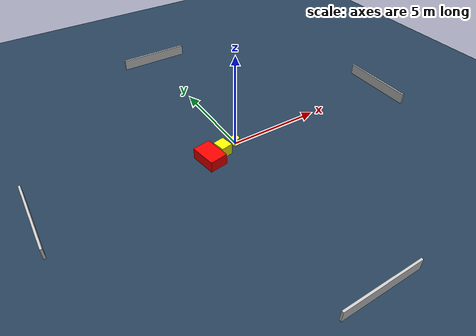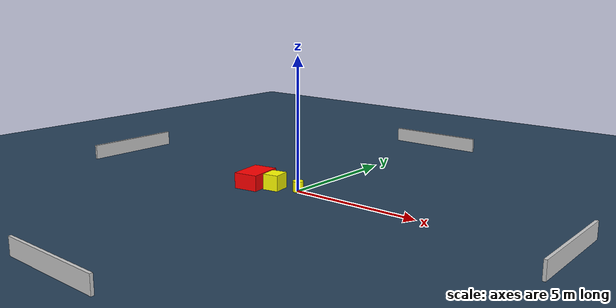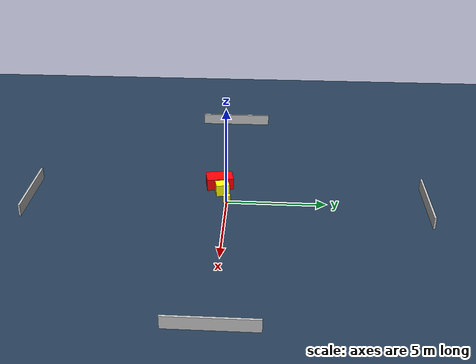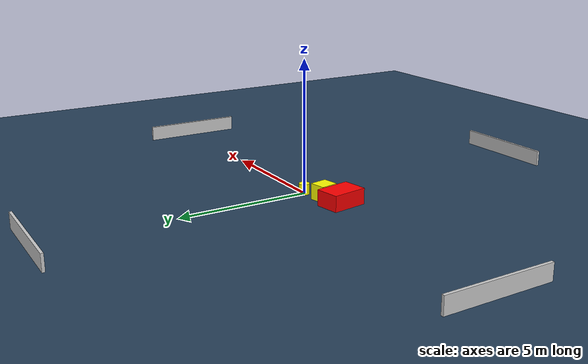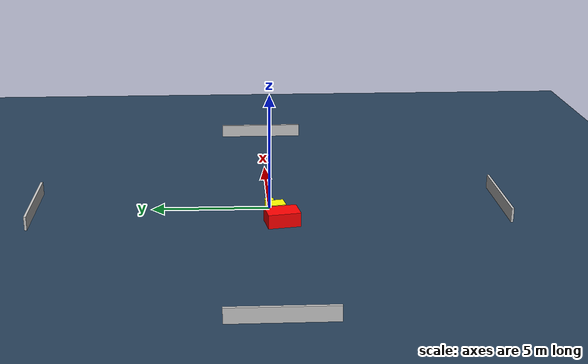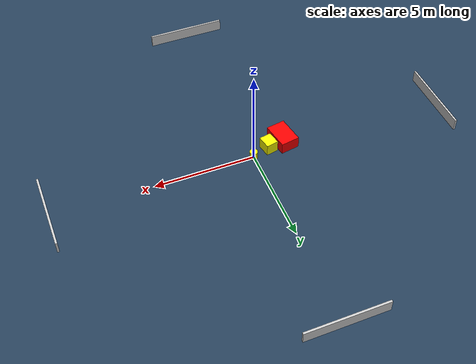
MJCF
<?xml version="1.0" ?>
<mujoco model="generated_environment">
  <option timestep="0.01" integrator="RK4" cone="elliptic"/>
  <default>
    <geom density="1"/>
  </default>
  <asset>
    <texture builtin="gradient" height="3072" name="skybox" rgb1="0.3 0.5 0.7" rgb2="0 0 0" type="skybox" width="512"/>
    <texture builtin="checker" height="300" name="groundplane" rgb1="0.2 0.3 0.4" rgb2="0.1 0.2 0.3" type="2d" width="300"/>
    <material name="groundplane" reflectance="0.2" texrepeat="5 5" texture="groundplane"/>
  </asset>
  <worldbody>
    <light dir="0 0 -1" directional="true" pos="0 0 1.5"/>
    <geom condim="3" friction="0.5 0.005 0.001" material="groundplane" name="floor" pos="0 0 0" size="0 0 0.05" type="plane"/>
    <body name="walls">
      <geom name="wall_1" condim="4" pos="-10.0 0.0 0.3" rgba="0.800000011920929 0.800000011920929 0.800000011920929 1.0" size="0.05 2.0 0.3" type="box"/>
      <geom name="wall_2" condim="4" pos="10.0 0.0 0.3" rgba="0.800000011920929 0.800000011920929 0.800000011920929 1.0" size="0.05 2.0 0.3" type="box"/>
      <geom name="wall_3" condim="4" pos="0.0 -10.0 0.3" rgba="0.800000011920929 0.800000011920929 0.800000011920929 1.0" size="2.0 0.05 0.3" type="box"/>
      <geom name="wall_4" condim="4" pos="0.0 10.0 0.3" rgba="0.800000011920929 0.800000011920929 0.800000011920929 1.0" size="2.0 0.05 0.3" type="box"/>
    </body>
    <body name="robot">
      <joint name="joint_x" type="slide" pos="0 0 0" axis="1 0 0"/>
      <joint name="joint_y" type="slide" pos="0 0 0" axis="0 1 0"/>
      <geom name="robot" type="cylinder" pos="0.0 0.0 0.2" size="0.2 0.2 0.0" mass="5.0" friction="1.0 0.005 0.0001" condim="4" rgba="1.0 1.0 0.0 1.0"/>
    </body>
    <body name="obstacle_1_movable">
      <geom name="obstacle_1_movable" condim="4" pos="-0.900527225761496 -0.2758482021037895 0.3" euler="0 0 100.74985666303775" friction="0.0 0.005 0.001" rgba="1.0 1.0 0.0 1.0" size="0.33796884173056696 0.3047128481077502 0.3" type="box" mass="0.1"/>
      <joint type="free"/>
    </body>
    <body name="obstacle_2_static">
      <geom name="obstacle_2_static" condim="4" pos="-1.7245011129663168 -0.4663170588337388 0.3" euler="0 0 279.3220811945773" friction="0.0 0.005 0.001" rgba="1.0 0.0 0.0 1.0" size="0.6863645284424795 0.47212551816568904 0.3" type="box"/>
    </body>
  </worldbody>
  <actuator>
    <motor name="actuator_x" joint="joint_x" gear="1" ctrlrange="-1 1"/>
    <motor name="actuator_y" joint="joint_y" gear="1" ctrlrange="-1 1"/>
  </actuator>
</mujoco>
